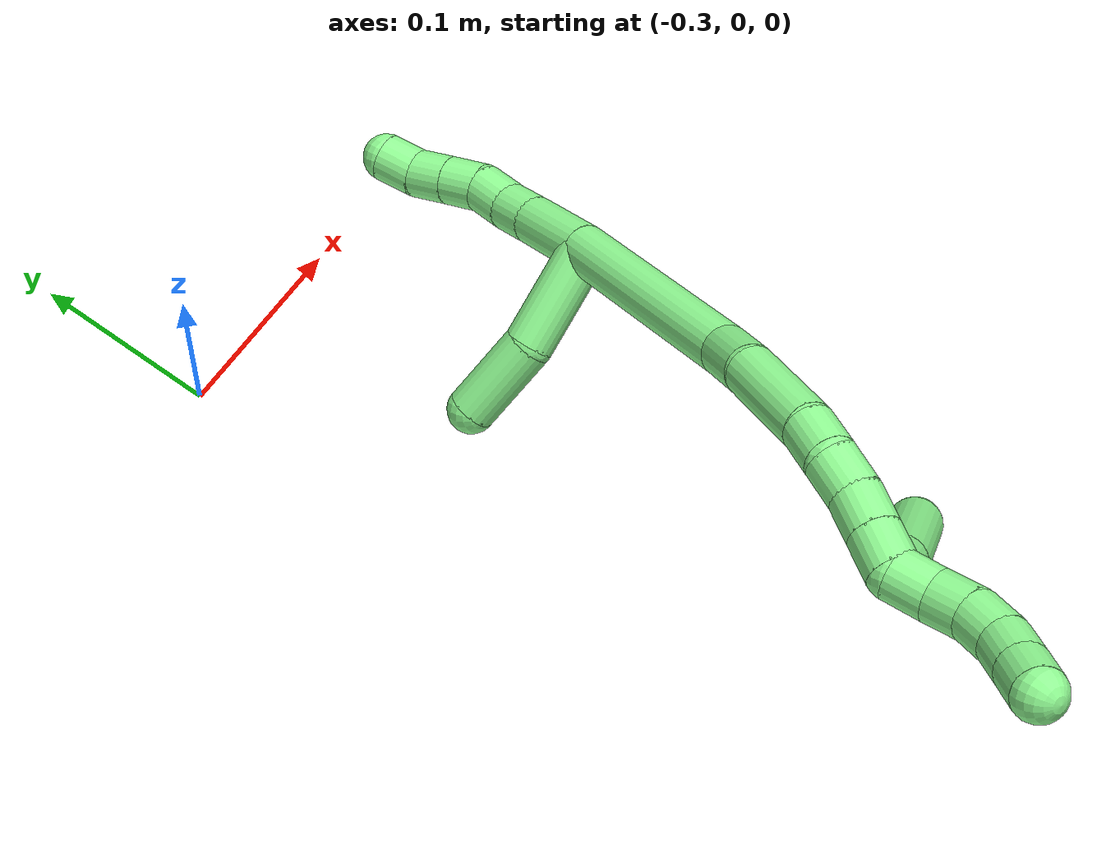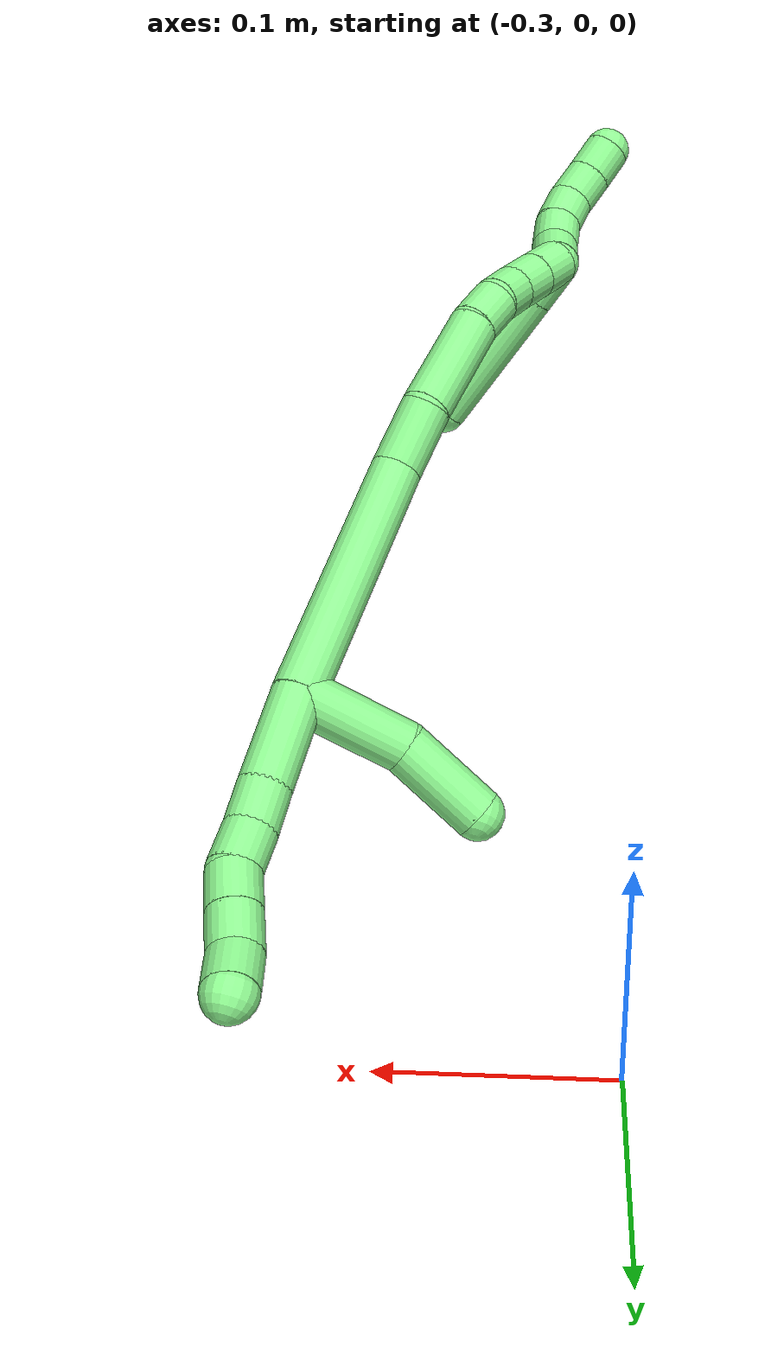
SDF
<sdf version="1.7">
 <world name="default">
  <model name="13">
   <static>0</static>
   <link name="13">
    <collision name="collision-cylinder-e_1_2_8">
     <pose>0.001375 -0.000635 -0.023181 3.11422 0.059238 2.27609</pose>
     <geometry><cylinder><radius>0.0125</radius><length>0.046462</length></cylinder></geometry>
     <surface>
      <friction><ode><mu>1.16</mu><mu2>1.16</mu2><slip1>0</slip1><slip2>0</slip2></ode></friction>
      <contact><ode><kp>1e+06</kp><kd>1</kd><max_vel>0</max_vel><min_depth>0.001</min_depth></ode></contact>
     </surface>
    </collision>
    <visual name="visual-cylinder-e_1_2_8">
     <pose>0.001375 -0.000635 -0.023181 3.11422 0.059238 2.27609</pose>
     <geometry><cylinder><radius>0.0125</radius><length>0.046462</length></cylinder></geometry>
     <material><ambient>0.564706 0.984314 0.572549 1</ambient></material>
    </visual>
    <collision name="collision-cylinder-e_2_8_9">
     <pose>0.003165 -0.000707 -0.057096 -3.08926 0.038544 -1.26946</pose>
     <geometry><cylinder><radius>0.0125</radius><length>0.021512</length></cylinder></geometry>
     <surface>
      <friction><ode><mu>1.16</mu><mu2>1.16</mu2><slip1>0</slip1><slip2>0</slip2></ode></friction>
      <contact><ode><kp>1e+06</kp><kd>1</kd><max_vel>0</max_vel><min_depth>0.001</min_depth></ode></contact>
     </surface>
    </collision>
    <visual name="visual-cylinder-e_2_8_9">
     <pose>0.003165 -0.000707 -0.057096 -3.08926 0.038544 -1.26946</pose>
     <geometry><cylinder><radius>0.0125</radius><length>0.021512</length></cylinder></geometry>
     <material><ambient>0.564706 0.984314 0.572549 1</ambient></material>
    </visual>
    <collision name="collision-cylinder-e_3_9_10">
     <pose>0.004611 0.002305 -0.078265 -2.911 0.095957 -0.786075</pose>
     <geometry><cylinder><radius>0.0125</radius><length>0.021537</length></cylinder></geometry>
     <surface>
      <friction><ode><mu>1.16</mu><mu2>1.16</mu2><slip1>0</slip1><slip2>0</slip2></ode></friction>
      <contact><ode><kp>1e+06</kp><kd>1</kd><max_vel>0</max_vel><min_depth>0.001</min_depth></ode></contact>
     </surface>
    </collision>
    <visual name="visual-cylinder-e_3_9_10">
     <pose>0.004611 0.002305 -0.078265 -2.911 0.095957 -0.786075</pose>
     <geometry><cylinder><radius>0.0125</radius><length>0.021537</length></cylinder></geometry>
     <material><ambient>0.564706 0.984314 0.572549 1</ambient></material>
    </visual>
    <collision name="collision-cylinder-e_4_10_11">
     <pose>0.003253 0.007823 -0.097944 -2.82114 -0.240699 1.28483</pose>
     <geometry><cylinder><radius>0.0125</radius><length>0.020057</length></cylinder></geometry>
     <surface>
      <friction><ode><mu>1.16</mu><mu2>1.16</mu2><slip1>0</slip1><slip2>0</slip2></ode></friction>
      <contact><ode><kp>1e+06</kp><kd>1</kd><max_vel>0</max_vel><min_depth>0.001</min_depth></ode></contact>
     </surface>
    </collision>
    <visual name="visual-cylinder-e_4_10_11">
     <pose>0.003253 0.007823 -0.097944 -2.82114 -0.240699 1.28483</pose>
     <geometry><cylinder><radius>0.0125</radius><length>0.020057</length></cylinder></geometry>
     <material><ambient>0.564706 0.984314 0.572549 1</ambient></material>
    </visual>
    <collision name="collision-cylinder-e_5_11_12">
     <pose>-0.00163 0.013869 -0.116577 -2.83447 -0.247816 1.35516</pose>
     <geometry><cylinder><radius>0.0125</radius><length>0.020322</length></cylinder></geometry>
     <surface>
      <friction><ode><mu>1.16</mu><mu2>1.16</mu2><slip1>0</slip1><slip2>0</slip2></ode></friction>
      <contact><ode><kp>1e+06</kp><kd>1</kd><max_vel>0</max_vel><min_depth>0.001</min_depth></ode></contact>
     </surface>
    </collision>
    <visual name="visual-cylinder-e_5_11_12">
     <pose>-0.00163 0.013869 -0.116577 -2.83447 -0.247816 1.35516</pose>
     <geometry><cylinder><radius>0.0125</radius><length>0.020322</length></cylinder></geometry>
     <material><ambient>0.564706 0.984314 0.572549 1</ambient></material>
    </visual>
    <collision name="collision-cylinder-e_6_12_6">
     <pose>-0.004807 0.021816 -0.134681 -2.62329 -0.068138 0.255711</pose>
     <geometry><cylinder><radius>0.0125</radius><length>0.02011</length></cylinder></geometry>
     <surface>
      <friction><ode><mu>1.16</mu><mu2>1.16</mu2><slip1>0</slip1><slip2>0</slip2></ode></friction>
      <contact><ode><kp>1e+06</kp><kd>1</kd><max_vel>0</max_vel><min_depth>0.001</min_depth></ode></contact>
     </surface>
    </collision>
    <visual name="visual-cylinder-e_6_12_6">
     <pose>-0.004807 0.021816 -0.134681 -2.62329 -0.068138 0.255711</pose>
     <geometry><cylinder><radius>0.0125</radius><length>0.02011</length></cylinder></geometry>
     <material><ambient>0.564706 0.984314 0.572549 1</ambient></material>
    </visual>
    <collision name="collision-cylinder-e_1_2_13">
     <pose>-0.026725 -0.004402 -0.003072 2.18011 -1.37259 -2.00762</pose>
     <geometry><cylinder><radius>0.0125</radius><length>0.054517</length></cylinder></geometry>
     <surface>
      <friction><ode><mu>1.16</mu><mu2>1.16</mu2><slip1>0</slip1><slip2>0</slip2></ode></friction>
      <contact><ode><kp>1e+06</kp><kd>1</kd><max_vel>0</max_vel><min_depth>0.001</min_depth></ode></contact>
     </surface>
    </collision>
    <visual name="visual-cylinder-e_1_2_13">
     <pose>-0.026725 -0.004402 -0.003072 2.18011 -1.37259 -2.00762</pose>
     <geometry><cylinder><radius>0.0125</radius><length>0.054517</length></cylinder></geometry>
     <material><ambient>0.564706 0.984314 0.572549 1</ambient></material>
    </visual>
    <collision name="collision-cylinder-e_2_13_5">
     <pose>-0.074007 -0.01245 -0.01516 2.7572 -1.12889 -2.54523</pose>
     <geometry><cylinder><radius>0.0125</radius><length>0.045483</length></cylinder></geometry>
     <surface>
      <friction><ode><mu>1.16</mu><mu2>1.16</mu2><slip1>0</slip1><slip2>0</slip2></ode></friction>
      <contact><ode><kp>1e+06</kp><kd>1</kd><max_vel>0</max_vel><min_depth>0.001</min_depth></ode></contact>
     </surface>
    </collision>
    <visual name="visual-cylinder-e_2_13_5">
     <pose>-0.074007 -0.01245 -0.01516 2.7572 -1.12889 -2.54523</pose>
     <geometry><cylinder><radius>0.0125</radius><length>0.045483</length></cylinder></geometry>
     <material><ambient>0.564706 0.984314 0.572549 1</ambient></material>
    </visual>
    <collision name="collision-cylinder-e_1_2_14">
     <pose>-0.007668 0.001625 0.063596 -0.02555 -0.119955 0.001534</pose>
     <geometry><cylinder><radius>0.0125</radius><length>0.128155</length></cylinder></geometry>
     <surface>
      <friction><ode><mu>1.16</mu><mu2>1.16</mu2><slip1>0</slip1><slip2>0</slip2></ode></friction>
      <contact><ode><kp>1e+06</kp><kd>1</kd><max_vel>0</max_vel><min_depth>0.001</min_depth></ode></contact>
     </surface>
    </collision>
    <visual name="visual-cylinder-e_1_2_14">
     <pose>-0.007668 0.001625 0.063596 -0.02555 -0.119955 0.001534</pose>
     <geometry><cylinder><radius>0.0125</radius><length>0.128155</length></cylinder></geometry>
     <material><ambient>0.564706 0.984314 0.572549 1</ambient></material>
    </visual>
    <collision name="collision-cylinder-e_2_14_15">
     <pose>-0.017969 0.008967 0.143473 -0.337711 -0.151454 0.025868</pose>
     <geometry><cylinder><radius>0.0125</radius><length>0.034908</length></cylinder></geometry>
     <surface>
      <friction><ode><mu>1.16</mu><mu2>1.16</mu2><slip1>0</slip1><slip2>0</slip2></ode></friction>
      <contact><ode><kp>1e+06</kp><kd>1</kd><max_vel>0</max_vel><min_depth>0.001</min_depth></ode></contact>
     </surface>
    </collision>
    <visual name="visual-cylinder-e_2_14_15">
     <pose>-0.017969 0.008967 0.143473 -0.337711 -0.151454 0.025868</pose>
     <geometry><cylinder><radius>0.0125</radius><length>0.034908</length></cylinder></geometry>
     <material><ambient>0.564706 0.984314 0.572549 1</ambient></material>
    </visual>
    <collision name="collision-cylinder-e_3_15_16">
     <pose>-0.026562 0.016918 0.186607 -0.082974 -0.217626 0.00907</pose>
     <geometry><cylinder><radius>0.0125</radius><length>0.055197</length></cylinder></geometry>
     <surface>
      <friction><ode><mu>1.16</mu><mu2>1.16</mu2><slip1>0</slip1><slip2>0</slip2></ode></friction>
      <contact><ode><kp>1e+06</kp><kd>1</kd><max_vel>0</max_vel><min_depth>0.001</min_depth></ode></contact>
     </surface>
    </collision>
    <visual name="visual-cylinder-e_3_15_16">
     <pose>-0.026562 0.016918 0.186607 -0.082974 -0.217626 0.00907</pose>
     <geometry><cylinder><radius>0.0125</radius><length>0.055197</length></cylinder></geometry>
     <material><ambient>0.564706 0.984314 0.572549 1</ambient></material>
    </visual>
    <collision name="collision-cylinder-e_4_16_17">
     <pose>-0.03636 0.018726 0.223485 0.042421 -0.365485 -0.007841</pose>
     <geometry><cylinder><radius>0.0125</radius><length>0.021483</length></cylinder></geometry>
     <surface>
      <friction><ode><mu>1.16</mu><mu2>1.16</mu2><slip1>0</slip1><slip2>0</slip2></ode></friction>
      <contact><ode><kp>1e+06</kp><kd>1</kd><max_vel>0</max_vel><min_depth>0.001</min_depth></ode></contact>
     </surface>
    </collision>
    <visual name="visual-cylinder-e_4_16_17">
     <pose>-0.03636 0.018726 0.223485 0.042421 -0.365485 -0.007841</pose>
     <geometry><cylinder><radius>0.0125</radius><length>0.021483</length></cylinder></geometry>
     <material><ambient>0.564706 0.984314 0.572549 1</ambient></material>
    </visual>
    <collision name="collision-cylinder-e_5_17_18">
     <pose>-0.044207 0.014816 0.241982 0.390109 -0.412362 -0.082596</pose>
     <geometry><cylinder><radius>0.0125</radius><length>0.020002</length></cylinder></geometry>
     <surface>
      <friction><ode><mu>1.16</mu><mu2>1.16</mu2><slip1>0</slip1><slip2>0</slip2></ode></friction>
      <contact><ode><kp>1e+06</kp><kd>1</kd><max_vel>0</max_vel><min_depth>0.001</min_depth></ode></contact>
     </surface>
    </collision>
    <visual name="visual-cylinder-e_5_17_18">
     <pose>-0.044207 0.014816 0.241982 0.390109 -0.412362 -0.082596</pose>
     <geometry><cylinder><radius>0.0125</radius><length>0.020002</length></cylinder></geometry>
     <material><ambient>0.564706 0.984314 0.572549 1</ambient></material>
    </visual>
    <collision name="collision-cylinder-e_6_18_19">
     <pose>-0.053228 0.009233 0.25889 0.243827 -0.52323 -0.065587</pose>
     <geometry><cylinder><radius>0.0125</radius><length>0.020068</length></cylinder></geometry>
     <surface>
      <friction><ode><mu>1.16</mu><mu2>1.16</mu2><slip1>0</slip1><slip2>0</slip2></ode></friction>
      <contact><ode><kp>1e+06</kp><kd>1</kd><max_vel>0</max_vel><min_depth>0.001</min_depth></ode></contact>
     </surface>
    </collision>
    <visual name="visual-cylinder-e_6_18_19">
     <pose>-0.053228 0.009233 0.25889 0.243827 -0.52323 -0.065587</pose>
     <geometry><cylinder><radius>0.0125</radius><length>0.020068</length></cylinder></geometry>
     <material><ambient>0.564706 0.984314 0.572549 1</ambient></material>
    </visual>
    <collision name="collision-cylinder-e_7_19_1">
     <pose>-0.063322 0.004978 0.275776 0.249911 -0.527384 -0.067798</pose>
     <geometry><cylinder><radius>0.0125</radius><length>0.020188</length></cylinder></geometry>
     <surface>
      <friction><ode><mu>1.16</mu><mu2>1.16</mu2><slip1>0</slip1><slip2>0</slip2></ode></friction>
      <contact><ode><kp>1e+06</kp><kd>1</kd><max_vel>0</max_vel><min_depth>0.001</min_depth></ode></contact>
     </surface>
    </collision>
    <visual name="visual-cylinder-e_7_19_1">
     <pose>-0.063322 0.004978 0.275776 0.249911 -0.527384 -0.067798</pose>
     <geometry><cylinder><radius>0.0125</radius><length>0.020188</length></cylinder></geometry>
     <material><ambient>0.564706 0.984314 0.572549 1</ambient></material>
    </visual>
    <collision name="collision-cylinder-e_1_1_20">
     <pose>-0.067925 -0.001815 0.293075 0.482535 0.047752 0.011752</pose>
     <geometry><cylinder><radius>0.0125</radius><length>0.02</length></cylinder></geometry>
     <surface>
      <friction><ode><mu>1.16</mu><mu2>1.16</mu2><slip1>0</slip1><slip2>0</slip2></ode></friction>
      <contact><ode><kp>1e+06</kp><kd>1</kd><max_vel>0</max_vel><min_depth>0.001</min_depth></ode></contact>
     </surface>
    </collision>
    <visual name="visual-cylinder-e_1_1_20">
     <pose>-0.067925 -0.001815 0.293075 0.482535 0.047752 0.011752</pose>
     <geometry><cylinder><radius>0.0125</radius><length>0.02</length></cylinder></geometry>
     <material><ambient>0.564706 0.984314 0.572549 1</ambient></material>
    </visual>
    <collision name="collision-cylinder-e_2_20_21">
     <pose>-0.066997 -0.008155 0.311767 0.171566 0.045057 0.003875</pose>
     <geometry><cylinder><radius>0.0125</radius><length>0.02</length></cylinder></geometry>
     <surface>
      <friction><ode><mu>1.16</mu><mu2>1.16</mu2><slip1>0</slip1><slip2>0</slip2></ode></friction>
      <contact><ode><kp>1e+06</kp><kd>1</kd><max_vel>0</max_vel><min_depth>0.001</min_depth></ode></contact>
     </surface>
    </collision>
    <visual name="visual-cylinder-e_2_20_21">
     <pose>-0.066997 -0.008155 0.311767 0.171566 0.045057 0.003875</pose>
     <geometry><cylinder><radius>0.0125</radius><length>0.02</length></cylinder></geometry>
     <material><ambient>0.564706 0.984314 0.572549 1</ambient></material>
    </visual>
    <collision name="collision-cylinder-e_3_21_22">
     <pose>-0.068365 -0.010165 0.331438 0.030953 -0.182901 -0.002839</pose>
     <geometry><cylinder><radius>0.0125</radius><length>0.02</length></cylinder></geometry>
     <surface>
      <friction><ode><mu>1.16</mu><mu2>1.16</mu2><slip1>0</slip1><slip2>0</slip2></ode></friction>
      <contact><ode><kp>1e+06</kp><kd>1</kd><max_vel>0</max_vel><min_depth>0.001</min_depth></ode></contact>
     </surface>
    </collision>
    <visual name="visual-cylinder-e_3_21_22">
     <pose>-0.068365 -0.010165 0.331438 0.030953 -0.182901 -0.002839</pose>
     <geometry><cylinder><radius>0.0125</radius><length>0.02</length></cylinder></geometry>
     <material><ambient>0.564706 0.984314 0.572549 1</ambient></material>
    </visual>
    <collision name="collision-cylinder-e_4_22_23">
     <pose>-0.073368 -0.008336 0.350503 -0.226926 -0.32404 0.037247</pose>
     <geometry><cylinder><radius>0.0125</radius><length>0.02</length></cylinder></geometry>
     <surface>
      <friction><ode><mu>1.16</mu><mu2>1.16</mu2><slip1>0</slip1><slip2>0</slip2></ode></friction>
      <contact><ode><kp>1e+06</kp><kd>1</kd><max_vel>0</max_vel><min_depth>0.001</min_depth></ode></contact>
     </surface>
    </collision>
    <visual name="visual-cylinder-e_4_22_23">
     <pose>-0.073368 -0.008336 0.350503 -0.226926 -0.32404 0.037247</pose>
     <geometry><cylinder><radius>0.0125</radius><length>0.02</length></cylinder></geometry>
     <material><ambient>0.564706 0.984314 0.572549 1</ambient></material>
    </visual>
    <collision name="collision-cylinder-e_5_23_4">
     <pose>-0.079608 -0.003332 0.368818 -0.306394 -0.310585 0.048336</pose>
     <geometry><cylinder><radius>0.0125</radius><length>0.02</length></cylinder></geometry>
     <surface>
      <friction><ode><mu>1.16</mu><mu2>1.16</mu2><slip1>0</slip1><slip2>0</slip2></ode></friction>
      <contact><ode><kp>1e+06</kp><kd>1</kd><max_vel>0</max_vel><min_depth>0.001</min_depth></ode></contact>
     </surface>
    </collision>
    <visual name="visual-cylinder-e_5_23_4">
     <pose>-0.079608 -0.003332 0.368818 -0.306394 -0.310585 0.048336</pose>
     <geometry><cylinder><radius>0.0125</radius><length>0.02</length></cylinder></geometry>
     <material><ambient>0.564706 0.984314 0.572549 1</ambient></material>
    </visual>
    <collision name="collision-cylinder-e_1_1_24">
     <pose>-0.064959 -0.005055 0.277048 2.30999 0.312458 0.685316</pose>
     <geometry><cylinder><radius>0.0125</radius><length>0.022398</length></cylinder></geometry>
     <surface>
      <friction><ode><mu>1.16</mu><mu2>1.16</mu2><slip1>0</slip1><slip2>0</slip2></ode></friction>
      <contact><ode><kp>1e+06</kp><kd>1</kd><max_vel>0</max_vel><min_depth>0.001</min_depth></ode></contact>
     </surface>
    </collision>
    <visual name="visual-cylinder-e_1_1_24">
     <pose>-0.064959 -0.005055 0.277048 2.30999 0.312458 0.685316</pose>
     <geometry><cylinder><radius>0.0125</radius><length>0.022398</length></cylinder></geometry>
     <material><ambient>0.564706 0.984314 0.572549 1</ambient></material>
    </visual>
    <collision name="collision-cylinder-e_2_24_3">
     <pose>-0.04914 -0.039325 0.244262 2.34104 0.324656 0.738595</pose>
     <geometry><cylinder><radius>0.0125</radius><length>0.077602</length></cylinder></geometry>
     <surface>
      <friction><ode><mu>1.16</mu><mu2>1.16</mu2><slip1>0</slip1><slip2>0</slip2></ode></friction>
      <contact><ode><kp>1e+06</kp><kd>1</kd><max_vel>0</max_vel><min_depth>0.001</min_depth></ode></contact>
     </surface>
    </collision>
    <visual name="visual-cylinder-e_2_24_3">
     <pose>-0.04914 -0.039325 0.244262 2.34104 0.324656 0.738595</pose>
     <geometry><cylinder><radius>0.0125</radius><length>0.077602</length></cylinder></geometry>
     <material><ambient>0.564706 0.984314 0.572549 1</ambient></material>
    </visual>
    <collision name="collision-sphere-3">
     <pose>-0.036763 -0.065719 0.218656 0 -0 0</pose>
     <geometry><sphere><radius>0.0125</radius></sphere></geometry>
     <surface>
      <friction><ode><mu>1.16</mu><mu2>1.16</mu2><slip1>0</slip1><slip2>0</slip2></ode></friction>
      <contact><ode><kp>1e+06</kp><kd>1</kd><max_vel>0</max_vel><min_depth>0.001</min_depth></ode></contact>
     </surface>
    </collision>
    <visual name="visual-sphere-3">
     <pose>-0.036763 -0.065719 0.218656 0 -0 0</pose>
     <geometry><sphere><radius>0.0125</radius></sphere></geometry>
     <material><ambient>0.564706 0.984314 0.572549 1</ambient></material>
    </visual>
    <collision name="collision-sphere-24">
     <pose>-0.061517 -0.012931 0.269868 0 -0 0</pose>
     <geometry><sphere><radius>0.0125</radius></sphere></geometry>
     <surface>
      <friction><ode><mu>1.16</mu><mu2>1.16</mu2><slip1>0</slip1><slip2>0</slip2></ode></friction>
      <contact><ode><kp>1e+06</kp><kd>1</kd><max_vel>0</max_vel><min_depth>0.001</min_depth></ode></contact>
     </surface>
    </collision>
    <visual name="visual-sphere-24">
     <pose>-0.061517 -0.012931 0.269868 0 -0 0</pose>
     <geometry><sphere><radius>0.0125</radius></sphere></geometry>
     <material><ambient>0.564706 0.984314 0.572549 1</ambient></material>
    </visual>
    <collision name="collision-sphere-4">
     <pose>-0.082664 -0.00046 0.377896 0 -0 0</pose>
     <geometry><sphere><radius>0.0125</radius></sphere></geometry>
     <surface>
      <friction><ode><mu>1.16</mu><mu2>1.16</mu2><slip1>0</slip1><slip2>0</slip2></ode></friction>
      <contact><ode><kp>1e+06</kp><kd>1</kd><max_vel>0</max_vel><min_depth>0.001</min_depth></ode></contact>
     </surface>
    </collision>
    <visual name="visual-sphere-4">
     <pose>-0.082664 -0.00046 0.377896 0 -0 0</pose>
     <geometry><sphere><radius>0.0125</radius></sphere></geometry>
     <material><ambient>0.564706 0.984314 0.572549 1</ambient></material>
    </visual>
    <collision name="collision-sphere-23">
     <pose>-0.076552 -0.006204 0.35974 0 -0 0</pose>
     <geometry><sphere><radius>0.0125</radius></sphere></geometry>
     <surface>
      <friction><ode><mu>1.16</mu><mu2>1.16</mu2><slip1>0</slip1><slip2>0</slip2></ode></friction>
      <contact><ode><kp>1e+06</kp><kd>1</kd><max_vel>0</max_vel><min_depth>0.001</min_depth></ode></contact>
     </surface>
    </collision>
    <visual name="visual-sphere-23">
     <pose>-0.076552 -0.006204 0.35974 0 -0 0</pose>
     <geometry><sphere><radius>0.0125</radius></sphere></geometry>
     <material><ambient>0.564706 0.984314 0.572549 1</ambient></material>
    </visual>
    <collision name="collision-sphere-22">
     <pose>-0.070184 -0.010469 0.341267 0 -0 0</pose>
     <geometry><sphere><radius>0.0125</radius></sphere></geometry>
     <surface>
      <friction><ode><mu>1.16</mu><mu2>1.16</mu2><slip1>0</slip1><slip2>0</slip2></ode></friction>
      <contact><ode><kp>1e+06</kp><kd>1</kd><max_vel>0</max_vel><min_depth>0.001</min_depth></ode></contact>
     </surface>
    </collision>
    <visual name="visual-sphere-22">
     <pose>-0.070184 -0.010469 0.341267 0 -0 0</pose>
     <geometry><sphere><radius>0.0125</radius></sphere></geometry>
     <material><ambient>0.564706 0.984314 0.572549 1</ambient></material>
    </visual>
    <collision name="collision-sphere-21">
     <pose>-0.066546 -0.009861 0.32161 0 -0 0</pose>
     <geometry><sphere><radius>0.0125</radius></sphere></geometry>
     <surface>
      <friction><ode><mu>1.16</mu><mu2>1.16</mu2><slip1>0</slip1><slip2>0</slip2></ode></friction>
      <contact><ode><kp>1e+06</kp><kd>1</kd><max_vel>0</max_vel><min_depth>0.001</min_depth></ode></contact>
     </surface>
    </collision>
    <visual name="visual-sphere-21">
     <pose>-0.066546 -0.009861 0.32161 0 -0 0</pose>
     <geometry><sphere><radius>0.0125</radius></sphere></geometry>
     <material><ambient>0.564706 0.984314 0.572549 1</ambient></material>
    </visual>
    <collision name="collision-sphere-20">
     <pose>-0.067447 -0.006449 0.301923 0 -0 0</pose>
     <geometry><sphere><radius>0.0125</radius></sphere></geometry>
     <surface>
      <friction><ode><mu>1.16</mu><mu2>1.16</mu2><slip1>0</slip1><slip2>0</slip2></ode></friction>
      <contact><ode><kp>1e+06</kp><kd>1</kd><max_vel>0</max_vel><min_depth>0.001</min_depth></ode></contact>
     </surface>
    </collision>
    <visual name="visual-sphere-20">
     <pose>-0.067447 -0.006449 0.301923 0 -0 0</pose>
     <geometry><sphere><radius>0.0125</radius></sphere></geometry>
     <material><ambient>0.564706 0.984314 0.572549 1</ambient></material>
    </visual>
    <collision name="collision-sphere-12">
     <pose>-0.004123 0.016847 -0.125967 0 -0 0</pose>
     <geometry><sphere><radius>0.0125</radius></sphere></geometry>
     <surface>
      <friction><ode><mu>1.16</mu><mu2>1.16</mu2><slip1>0</slip1><slip2>0</slip2></ode></friction>
      <contact><ode><kp>1e+06</kp><kd>1</kd><max_vel>0</max_vel><min_depth>0.001</min_depth></ode></contact>
     </surface>
    </collision>
    <visual name="visual-sphere-12">
     <pose>-0.004123 0.016847 -0.125967 0 -0 0</pose>
     <geometry><sphere><radius>0.0125</radius></sphere></geometry>
     <material><ambient>0.564706 0.984314 0.572549 1</ambient></material>
    </visual>
    <collision name="collision-sphere-11">
     <pose>0.000862 0.010891 -0.107188 0 -0 0</pose>
     <geometry><sphere><radius>0.0125</radius></sphere></geometry>
     <surface>
      <friction><ode><mu>1.16</mu><mu2>1.16</mu2><slip1>0</slip1><slip2>0</slip2></ode></friction>
      <contact><ode><kp>1e+06</kp><kd>1</kd><max_vel>0</max_vel><min_depth>0.001</min_depth></ode></contact>
     </surface>
    </collision>
    <visual name="visual-sphere-11">
     <pose>0.000862 0.010891 -0.107188 0 -0 0</pose>
     <geometry><sphere><radius>0.0125</radius></sphere></geometry>
     <material><ambient>0.564706 0.984314 0.572549 1</ambient></material>
    </visual>
    <collision name="collision-sphere-10">
     <pose>0.005643 0.004755 -0.088701 0 -0 0</pose>
     <geometry><sphere><radius>0.0125</radius></sphere></geometry>
     <surface>
      <friction><ode><mu>1.16</mu><mu2>1.16</mu2><slip1>0</slip1><slip2>0</slip2></ode></friction>
      <contact><ode><kp>1e+06</kp><kd>1</kd><max_vel>0</max_vel><min_depth>0.001</min_depth></ode></contact>
     </surface>
    </collision>
    <visual name="visual-sphere-10">
     <pose>0.005643 0.004755 -0.088701 0 -0 0</pose>
     <geometry><sphere><radius>0.0125</radius></sphere></geometry>
     <material><ambient>0.564706 0.984314 0.572549 1</ambient></material>
    </visual>
    <collision name="collision-sphere-9">
     <pose>0.00358 -0.000145 -0.06783 0 -0 0</pose>
     <geometry><sphere><radius>0.0125</radius></sphere></geometry>
     <surface>
      <friction><ode><mu>1.16</mu><mu2>1.16</mu2><slip1>0</slip1><slip2>0</slip2></ode></friction>
      <contact><ode><kp>1e+06</kp><kd>1</kd><max_vel>0</max_vel><min_depth>0.001</min_depth></ode></contact>
     </surface>
    </collision>
    <visual name="visual-sphere-9">
     <pose>0.00358 -0.000145 -0.06783 0 -0 0</pose>
     <geometry><sphere><radius>0.0125</radius></sphere></geometry>
     <material><ambient>0.564706 0.984314 0.572549 1</ambient></material>
    </visual>
    <collision name="collision-sphere-2">
     <geometry><sphere><radius>0.0125</radius></sphere></geometry>
     <surface>
      <friction><ode><mu>1.16</mu><mu2>1.16</mu2><slip1>0</slip1><slip2>0</slip2></ode></friction>
      <contact><ode><kp>1e+06</kp><kd>1</kd><max_vel>0</max_vel><min_depth>0.001</min_depth></ode></contact>
     </surface>
    </collision>
    <visual name="visual-sphere-2">
     <geometry><sphere><radius>0.0125</radius></sphere></geometry>
     <material><ambient>0.564706 0.984314 0.572549 1</ambient></material>
    </visual>
    <collision name="collision-sphere-19">
     <pose>-0.058242 0.007135 0.267324 0 -0 0</pose>
     <geometry><sphere><radius>0.0125</radius></sphere></geometry>
     <surface>
      <friction><ode><mu>1.16</mu><mu2>1.16</mu2><slip1>0</slip1><slip2>0</slip2></ode></friction>
      <contact><ode><kp>1e+06</kp><kd>1</kd><max_vel>0</max_vel><min_depth>0.001</min_depth></ode></contact>
     </surface>
    </collision>
    <visual name="visual-sphere-19">
     <pose>-0.058242 0.007135 0.267324 0 -0 0</pose>
     <geometry><sphere><radius>0.0125</radius></sphere></geometry>
     <material><ambient>0.564706 0.984314 0.572549 1</ambient></material>
    </visual>
    <collision name="collision-sphere-8">
     <pose>0.002751 -0.001269 -0.046363 0 -0 0</pose>
     <geometry><sphere><radius>0.0125</radius></sphere></geometry>
     <surface>
      <friction><ode><mu>1.16</mu><mu2>1.16</mu2><slip1>0</slip1><slip2>0</slip2></ode></friction>
      <contact><ode><kp>1e+06</kp><kd>1</kd><max_vel>0</max_vel><min_depth>0.001</min_depth></ode></contact>
     </surface>
    </collision>
    <visual name="visual-sphere-8">
     <pose>0.002751 -0.001269 -0.046363 0 -0 0</pose>
     <geometry><sphere><radius>0.0125</radius></sphere></geometry>
     <material><ambient>0.564706 0.984314 0.572549 1</ambient></material>
    </visual>
    <collision name="collision-sphere-6">
     <pose>-0.005492 0.026786 -0.143395 0 -0 0</pose>
     <geometry><sphere><radius>0.0125</radius></sphere></geometry>
     <surface>
      <friction><ode><mu>1.16</mu><mu2>1.16</mu2><slip1>0</slip1><slip2>0</slip2></ode></friction>
      <contact><ode><kp>1e+06</kp><kd>1</kd><max_vel>0</max_vel><min_depth>0.001</min_depth></ode></contact>
     </surface>
    </collision>
    <visual name="visual-sphere-6">
     <pose>-0.005492 0.026786 -0.143395 0 -0 0</pose>
     <geometry><sphere><radius>0.0125</radius></sphere></geometry>
     <material><ambient>0.564706 0.984314 0.572549 1</ambient></material>
    </visual>
    <collision name="collision-sphere-13">
     <pose>-0.05345 -0.008803 -0.006144 0 -0 0</pose>
     <geometry><sphere><radius>0.0125</radius></sphere></geometry>
     <surface>
      <friction><ode><mu>1.16</mu><mu2>1.16</mu2><slip1>0</slip1><slip2>0</slip2></ode></friction>
      <contact><ode><kp>1e+06</kp><kd>1</kd><max_vel>0</max_vel><min_depth>0.001</min_depth></ode></contact>
     </surface>
    </collision>
    <visual name="visual-sphere-13">
     <pose>-0.05345 -0.008803 -0.006144 0 -0 0</pose>
     <geometry><sphere><radius>0.0125</radius></sphere></geometry>
     <material><ambient>0.564706 0.984314 0.572549 1</ambient></material>
    </visual>
    <collision name="collision-sphere-5">
     <pose>-0.094563 -0.016097 -0.024176 0 -0 0</pose>
     <geometry><sphere><radius>0.0125</radius></sphere></geometry>
     <surface>
      <friction><ode><mu>1.16</mu><mu2>1.16</mu2><slip1>0</slip1><slip2>0</slip2></ode></friction>
      <contact><ode><kp>1e+06</kp><kd>1</kd><max_vel>0</max_vel><min_depth>0.001</min_depth></ode></contact>
     </surface>
    </collision>
    <visual name="visual-sphere-5">
     <pose>-0.094563 -0.016097 -0.024176 0 -0 0</pose>
     <geometry><sphere><radius>0.0125</radius></sphere></geometry>
     <material><ambient>0.564706 0.984314 0.572549 1</ambient></material>
    </visual>
    <collision name="collision-sphere-14">
     <pose>-0.015336 0.00325 0.127193 0 -0 0</pose>
     <geometry><sphere><radius>0.0125</radius></sphere></geometry>
     <surface>
      <friction><ode><mu>1.16</mu><mu2>1.16</mu2><slip1>0</slip1><slip2>0</slip2></ode></friction>
      <contact><ode><kp>1e+06</kp><kd>1</kd><max_vel>0</max_vel><min_depth>0.001</min_depth></ode></contact>
     </surface>
    </collision>
    <visual name="visual-sphere-14">
     <pose>-0.015336 0.00325 0.127193 0 -0 0</pose>
     <geometry><sphere><radius>0.0125</radius></sphere></geometry>
     <material><ambient>0.564706 0.984314 0.572549 1</ambient></material>
    </visual>
    <collision name="collision-sphere-15">
     <pose>-0.020603 0.014684 0.159752 0 -0 0</pose>
     <geometry><sphere><radius>0.0125</radius></sphere></geometry>
     <surface>
      <friction><ode><mu>1.16</mu><mu2>1.16</mu2><slip1>0</slip1><slip2>0</slip2></ode></friction>
      <contact><ode><kp>1e+06</kp><kd>1</kd><max_vel>0</max_vel><min_depth>0.001</min_depth></ode></contact>
     </surface>
    </collision>
    <visual name="visual-sphere-15">
     <pose>-0.020603 0.014684 0.159752 0 -0 0</pose>
     <geometry><sphere><radius>0.0125</radius></sphere></geometry>
     <material><ambient>0.564706 0.984314 0.572549 1</ambient></material>
    </visual>
    <collision name="collision-sphere-16">
     <pose>-0.032521 0.019151 0.213462 0 -0 0</pose>
     <geometry><sphere><radius>0.0125</radius></sphere></geometry>
     <surface>
      <friction><ode><mu>1.16</mu><mu2>1.16</mu2><slip1>0</slip1><slip2>0</slip2></ode></friction>
      <contact><ode><kp>1e+06</kp><kd>1</kd><max_vel>0</max_vel><min_depth>0.001</min_depth></ode></contact>
     </surface>
    </collision>
    <visual name="visual-sphere-16">
     <pose>-0.032521 0.019151 0.213462 0 -0 0</pose>
     <geometry><sphere><radius>0.0125</radius></sphere></geometry>
     <material><ambient>0.564706 0.984314 0.572549 1</ambient></material>
    </visual>
    <collision name="collision-sphere-17">
     <pose>-0.040199 0.0183 0.233508 0 -0 0</pose>
     <geometry><sphere><radius>0.0125</radius></sphere></geometry>
     <surface>
      <friction><ode><mu>1.16</mu><mu2>1.16</mu2><slip1>0</slip1><slip2>0</slip2></ode></friction>
      <contact><ode><kp>1e+06</kp><kd>1</kd><max_vel>0</max_vel><min_depth>0.001</min_depth></ode></contact>
     </surface>
    </collision>
    <visual name="visual-sphere-17">
     <pose>-0.040199 0.0183 0.233508 0 -0 0</pose>
     <geometry><sphere><radius>0.0125</radius></sphere></geometry>
     <material><ambient>0.564706 0.984314 0.572549 1</ambient></material>
    </visual>
    <collision name="collision-sphere-18">
     <pose>-0.048215 0.011331 0.250456 0 -0 0</pose>
     <geometry><sphere><radius>0.0125</radius></sphere></geometry>
     <surface>
      <friction><ode><mu>1.16</mu><mu2>1.16</mu2><slip1>0</slip1><slip2>0</slip2></ode></friction>
      <contact><ode><kp>1e+06</kp><kd>1</kd><max_vel>0</max_vel><min_depth>0.001</min_depth></ode></contact>
     </surface>
    </collision>
    <visual name="visual-sphere-18">
     <pose>-0.048215 0.011331 0.250456 0 -0 0</pose>
     <geometry><sphere><radius>0.0125</radius></sphere></geometry>
     <material><ambient>0.564706 0.984314 0.572549 1</ambient></material>
    </visual>
    <collision name="collision-sphere-1">
     <pose>-0.068402 0.00282 0.284227 0 -0 0</pose>
     <geometry><sphere><radius>0.0125</radius></sphere></geometry>
     <surface>
      <friction><ode><mu>1.16</mu><mu2>1.16</mu2><slip1>0</slip1><slip2>0</slip2></ode></friction>
      <contact><ode><kp>1e+06</kp><kd>1</kd><max_vel>0</max_vel><min_depth>0.001</min_depth></ode></contact>
     </surface>
    </collision>
    <visual name="visual-sphere-1">
     <pose>-0.068402 0.00282 0.284227 0 -0 0</pose>
     <geometry><sphere><radius>0.0125</radius></sphere></geometry>
     <material><ambient>0.564706 0.984314 0.572549 1</ambient></material>
    </visual>
    <inertial>
     <pose>-0.032184 -0.001714 0.120327 0 -0 0</pose>
     <mass>0.75</mass>
     <inertia>
      <ixx>0.000255</ixx>
      <ixy>0</ixy>
      <ixz>0</ixz>
      <iyy>0.000252</iyy>
      <iyz>0</iyz>
      <izz>7.7e-05</izz>
     </inertia>
    </inertial>
   </link>
   <pose>-0.156822 -0.13677 0.093554 0.95211 -0.318807 0.017644</pose>
  </model>
 </world>
</sdf>
